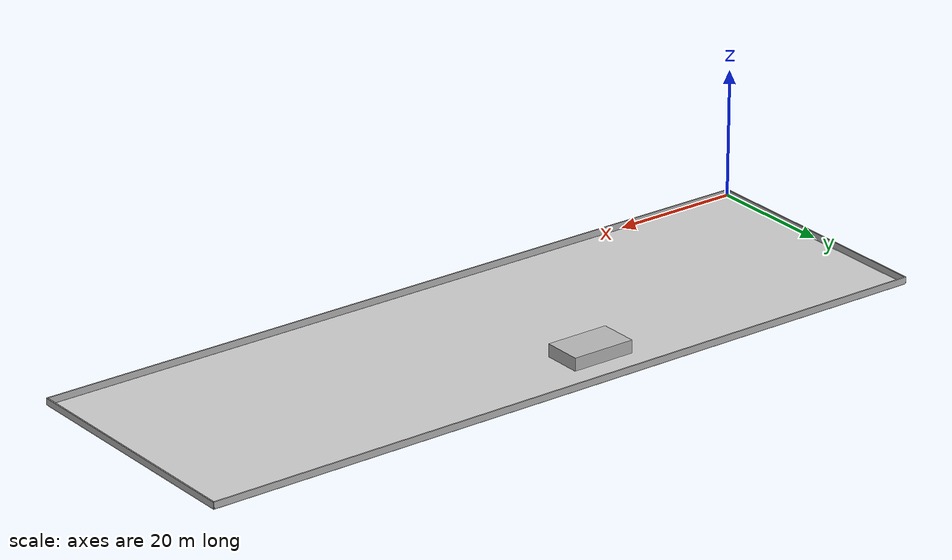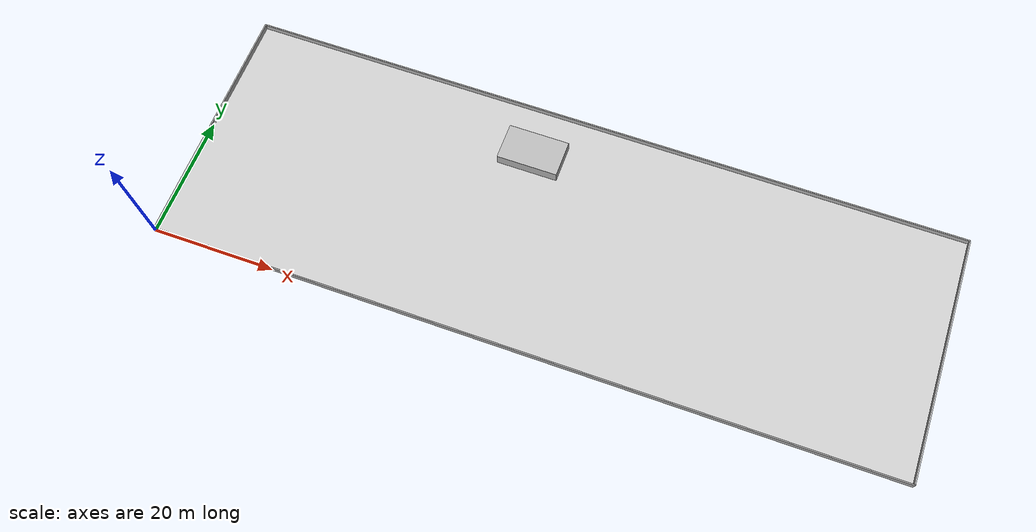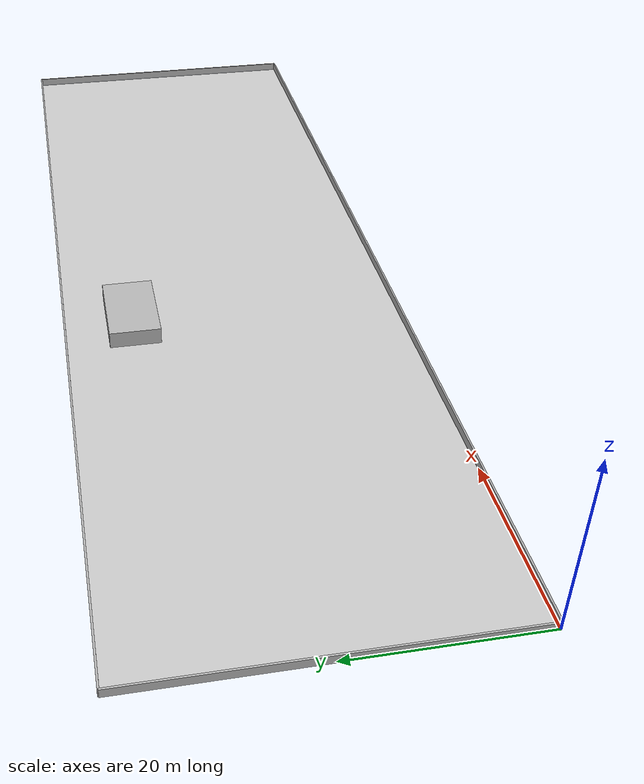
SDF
<?xml version="1.0"?>
<sdf version="1.9">
  <world name="amr_test">
    <gravity>0 0 0</gravity>
    <physics name="deterministic" type="ode"><max_step_size>0.001</max_step_size><real_time_factor>1</real_time_factor><real_time_update_rate>1000</real_time_update_rate></physics>
    <plugin filename="gz-sim-physics-system" name="gz::sim::systems::Physics"/>
    <plugin filename="gz-sim-user-commands-system" name="gz::sim::systems::UserCommands"/>
    <plugin filename="gz-sim-scene-broadcaster-system" name="gz::sim::systems::SceneBroadcaster"/>
    <light name="sun" type="directional"><cast_shadows>true</cast_shadows><pose>0 0 10 0 0 0</pose><direction>-0.5 0.5 -1</direction></light>
    <model name="factory_floor">
      <static>true</static>
      <pose>60 20 0 0 0 0</pose>
      <link name="link">
        <collision name="collision"><geometry><plane><normal>0 0 1</normal><size>120 40</size></plane></geometry></collision>
        <visual name="visual"><geometry><plane><normal>0 0 1</normal><size>120 40</size></plane></geometry></visual>
      </link>
    </model>
    <model name="north_boundary">
      <static>true</static><pose>60 40 0.5 0 0 0</pose><link name="link">
        <collision name="collision"><geometry><box><size>120 0.2 1</size></box></geometry></collision>
        <visual name="visual"><geometry><box><size>120 0.2 1</size></box></geometry></visual>
      </link>
    </model>
    <model name="south_boundary">
      <static>true</static><pose>60 0 0.5 0 0 0</pose><link name="link">
        <collision name="collision"><geometry><box><size>120 0.2 1</size></box></geometry></collision>
        <visual name="visual"><geometry><box><size>120 0.2 1</size></box></geometry></visual>
      </link>
    </model>
    <model name="west_boundary">
      <static>true</static><pose>0 20 0.5 0 0 0</pose><link name="link">
        <collision name="collision"><geometry><box><size>0.2 40 1</size></box></geometry></collision>
        <visual name="visual"><geometry><box><size>0.2 40 1</size></box></geometry></visual>
      </link>
    </model>
    <model name="east_boundary">
      <static>true</static><pose>120 20 0.5 0 0 0</pose><link name="link">
        <collision name="collision"><geometry><box><size>0.2 40 1</size></box></geometry></collision>
        <visual name="visual"><geometry><box><size>0.2 40 1</size></box></geometry></visual>
      </link>
    </model>
    <model name="giga_press_obstacle">
      <static>true</static><pose>51 32 1 0 0 0</pose><link name="link">
        <collision name="collision"><geometry><box><size>10 6 2</size></box></geometry></collision>
        <visual name="visual"><geometry><box><size>10 6 2</size></box></geometry></visual>
      </link>
    </model>
  </world>
</sdf>
